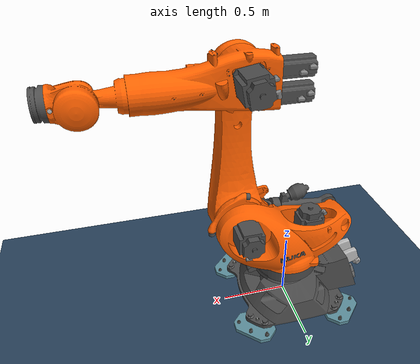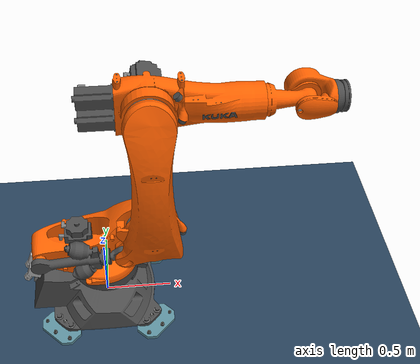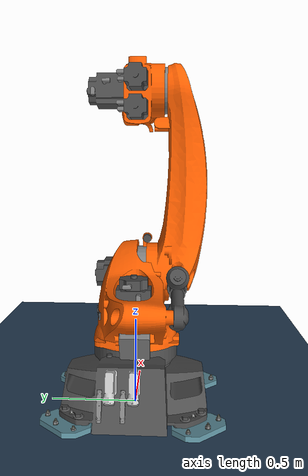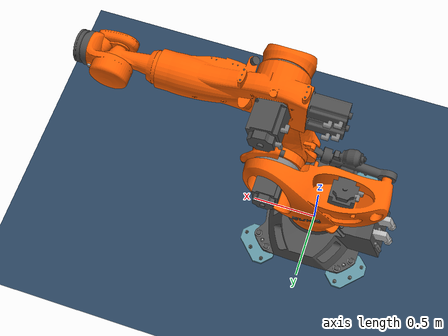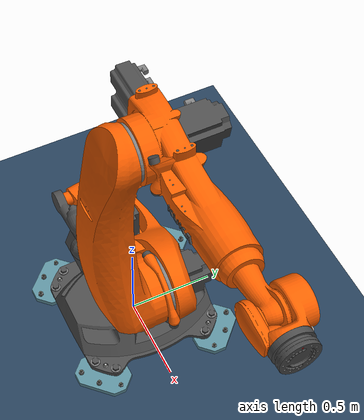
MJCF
<mujoco model="kuka_kr300_r2500_ultra_with_hydraulic_loop">
  <compiler angle="radian" meshdir="." autolimits="true" inertiafromgeom="true"/>
  <option gravity="0 0 -9.81" timestep="0.001" integrator="implicitfast" iterations="200" />
  <visual>
    <headlight diffuse="0.6 0.6 0.6" ambient="0.3 0.3 0.3" specular="0 0 0"/>
    <rgba haze="0.15 0.25 0.35 1"/>
    <global azimuth="220" elevation="-10"/>
    <quality shadowsize="8192"/>
  </visual>
  <default>
    <geom density="800" contype="0" conaffinity="0" />
    <joint damping="8" armature="0.2" frictionloss="0.05" />
  </default>
  <asset>
    <texture type="skybox" builtin="gradient" rgb1="0.3 0.5 0.7" rgb2="0 0 0" width="512" height="3072"/>
    <texture type="2d" name="groundplane" builtin="checker" mark="edge" rgb1="0.2 0.3 0.4" rgb2="0.1 0.2 0.3" markrgb="0.8 0.8 0.8" width="300" height="300"/>
    <material name="groundplane" texture="groundplane" texuniform="true" texrepeat="5 5" reflectance="0.2"/>
    <mesh name="mesh_base" file="KUKA-KR-300-R2500-ultra-base.stl" />
    <mesh name="mesh_1" file="KUKA-KR-300-R2500-ultra-1.stl" />
    <mesh name="mesh_2" file="KUKA-KR-300-R2500-ultra-2.stl" />
    <mesh name="mesh_3" file="KUKA-KR-300-R2500-ultra-3.stl" />
    <mesh name="mesh_4" file="KUKA-KR-300-R2500-ultra-4.stl" />
    <mesh name="mesh_5" file="KUKA-KR-300-R2500-ultra-5.stl" />
    <mesh name="mesh_6" file="KUKA-KR-300-R2500-ultra-6.stl" />
    <mesh name="mesh_7" file="KUKA-KR-300-R2500-ultra-7.stl" />
    <mesh name="mesh_8" file="KUKA-KR-300-R2500-ultra-8.stl" />
    <mesh name="vmesh_base" file="obj/0.obj" />
    <mesh name="cmesh_0" file="obj/0.obj" />
    <mesh name="vmesh_0_0" file="obj/0_0.obj" />
    <mesh name="vmesh_0_1" file="obj/0_1.obj" />
    <mesh name="vmesh_0_2" file="obj/0_2.obj" />
    <mesh name="vmesh_0_3" file="obj/0_3.obj" />
    <mesh name="vmesh_0_4" file="obj/0_4.obj" />
    <mesh name="vmesh_1" file="obj/1.obj" />
    <mesh name="cmesh_1" file="obj/1.obj" />
    <mesh name="vmesh_1_0" file="obj/1_0.obj" />
    <mesh name="vmesh_1_1" file="obj/1_1.obj" />
    <mesh name="vmesh_1_2" file="obj/1_2.obj" />
    <mesh name="vmesh_2" file="obj/2.obj" />
    <mesh name="cmesh_2" file="obj/2.obj" />
    <mesh name="vmesh_2_0" file="obj/2_0.obj" />
    <mesh name="vmesh_2_1" file="obj/2_1.obj" />
    <mesh name="vmesh_2_2" file="obj/2_2.obj" />
    <mesh name="vmesh_3" file="obj/3.obj" />
    <mesh name="cmesh_3" file="obj/3.obj" />
    <mesh name="vmesh_3_0" file="obj/3_0.obj" />
    <mesh name="vmesh_3_1" file="obj/3_1.obj" />
    <mesh name="vmesh_3_2" file="obj/3_2.obj" />
    <mesh name="vmesh_4" file="obj/4.obj" />
    <mesh name="vmesh_5" file="obj/5.obj" />
    <mesh name="cmesh_5" file="obj/5.obj" />
    <mesh name="vmesh_5_0" file="obj/5_0.obj" />
    <mesh name="vmesh_5_1" file="obj/5_1.obj" />
    <mesh name="vmesh_5_2" file="obj/5_2.obj" />
    <mesh name="vmesh_6" file="obj/6.obj" />
    <mesh name="cmesh_6" file="obj/6.obj" />
    <mesh name="vmesh_6_0" file="obj/6_0.obj" inertia="shell" />
    <mesh name="vmesh_6_1" file="obj/6_1.obj" inertia="shell" />
    <mesh name="vmesh_6_2" file="obj/6_2.obj" inertia="shell" />
    <mesh name="vmesh_6_3" file="obj/6_3.obj" inertia="shell" />
    <mesh name="vmesh_7" file="obj/7.obj" />
    <mesh name="vmesh_8" file="obj/8.obj" />
  </asset>
  <worldbody>
    <light name="key_light" pos="3 0 4" dir="-1 0 -1" directional="true" diffuse="0.9 0.9 0.9"/>
    <light name="fill_light" pos="-2 2 3" dir="0 -0.3 -1" directional="true" diffuse="0.35 0.35 0.4"/>
    <geom name="floor" size="0 0 0.05" type="plane" material="groundplane"/>
    <body name="base_link" pos="0 0 0" quat="1 0 0 0">
      <geom type="mesh" mesh="cmesh_0" contype="1" conaffinity="1" group="3" rgba="0 0 0 0" />
      <geom type="mesh" mesh="vmesh_0_0" mass="0" rgba="0.388235 0.400000 0.356863 1" contype="0" conaffinity="0" group="1" />
      <geom type="mesh" mesh="vmesh_0_1" mass="0" rgba="0.298039 0.298039 0.298039 1" contype="0" conaffinity="0" group="1" />
      <geom type="mesh" mesh="vmesh_0_2" mass="0" rgba="0.368627 0.568627 0.619608 1" contype="0" conaffinity="0" group="1" />
      <geom type="mesh" mesh="vmesh_0_3" mass="0" rgba="0.749020 0.749020 0.749020 1" contype="0" conaffinity="0" group="1" />
      <geom type="mesh" mesh="vmesh_0_4" mass="0" rgba="0.498039 0.498039 0.498039 1" contype="0" conaffinity="0" group="1" />
      <body name="link1" pos="0 0 0.705" >
        <joint name="joint1" type="hinge" axis="0 0 1" range="-3.22885912 3.22885912" />
        <geom type="mesh" mesh="cmesh_1" pos="-0 -0 -0.705" quat="1 -0 0 -0" contype="1" conaffinity="1" group="3" rgba="0 0 0 0" />
        <geom type="mesh" mesh="vmesh_1_0" mass="0" rgba="1.000000 0.376471 0.000000 1" pos="-0 -0 -0.705" quat="1 -0 0 -0" contype="0" conaffinity="0" group="1" />
        <geom type="mesh" mesh="vmesh_1_1" mass="0" rgba="0.298039 0.298039 0.298039 1" pos="-0 -0 -0.705" quat="1 -0 0 -0" contype="0" conaffinity="0" group="1" />
        <geom type="mesh" mesh="vmesh_1_2" mass="0" rgba="0.498039 0.498039 0.498039 1" pos="-0 -0 -0.705" quat="1 -0 0 -0" contype="0" conaffinity="0" group="1" />
        <body name="balancer_cylinder" pos="-0.446956 -0.244 -0.069725" >
          <joint name="balancer_base_hinge" type="hinge" axis="0 1 0" range="-1.57079633 1.57079633" />
          <geom type="mesh" mesh="vmesh_7" rgba="0.298039 0.298039 0.298039 1" pos="0.446956 0.244 -0.635275"/>
          <body name="balancer_rod" pos="0.596956 0.004 0.069725">
            <joint name="balancer_slide" type="slide" axis="0.993245 0.006655 0.116008" range="0 0.6" damping="40" armature="0.5" frictionloss="10" />
            <geom type="mesh" mesh="vmesh_8" rgba="0.298039 0.298039 0.298039 1" pos="-0.15 0.24 -0.705"/>
            <site name="rod_pin" pos="0 0 0" size="0.01" />
          </body>
        </body>
        <body name="link2" pos="0.35 0 0.0" >
          <joint name="joint2" type="hinge" axis="0 1 0" range="-0.872664626 1.48352986" />
          <geom type="mesh" mesh="cmesh_2" pos="-0.35 0 -0.705 " contype="1" conaffinity="1" group="3" rgba="0 0 0 0" />
          <geom type="mesh" mesh="vmesh_2_0" mass="0" rgba="1.000000 0.376471 0.000000 1" pos="-0.35 0 -0.705 " contype="0" conaffinity="0" group="1" />
          <geom type="mesh" mesh="vmesh_2_1" mass="0" rgba="0.298039 0.298039 0.298039 1" pos="-0.35 0 -0.705 " contype="0" conaffinity="0" group="1" />
          <geom type="mesh" mesh="vmesh_2_2" mass="0" rgba="0.498039 0.498039 0.498039 1" pos="-0.35 0 -0.705 " contype="0" conaffinity="0" group="1" />
            <site name="arm_pin" pos="-0.2 -0.24 0" size="0.01" />
            <body name="link3" pos="0 0 1.15" quat="1 0 -0 -0">
            <joint name="joint3" type="hinge" axis="0 1 0" range="-3.66519143 1.13446401" />
            <geom type="mesh" mesh="cmesh_3" pos="-0.35 0 -1.855" contype="1" conaffinity="1" group="3" rgba="0 0 0 0" />
            <geom type="mesh" mesh="vmesh_3_0" mass="0" rgba="1.000000 0.376471 0.000000 1" pos="-0.35 0 -1.855" contype="0" conaffinity="0" group="1" />
            <geom type="mesh" mesh="vmesh_3_1" mass="0" rgba="0.498039 0.498039 0.498039 1" pos="-0.35 0 -1.855" contype="0" conaffinity="0" group="1" />
            <geom type="mesh" mesh="vmesh_3_2" mass="0" rgba="0.298039 0.298039 0.298039 1" pos="-0.35 0 -1.855" contype="0" conaffinity="0" group="1" />
            <body name="link4" pos="1 0 -0.041" >
              <joint name="joint4" type="hinge" axis="1 0 0" range="-6.10865238 6.10865238" />
              <geom type="mesh" mesh="vmesh_4" rgba="1.000000 0.376471 0.000000 1" pos="-1.35 0 -1.814"/>
              <body name="link5" pos="0 0 0" >
                <joint name="joint5" type="hinge" axis="0 1 0" range="-2.13802833 2.13802833" />
                <geom type="mesh" mesh="cmesh_5" pos="-1.35 0 -1.814" contype="1" conaffinity="1" group="3" rgba="0 0 0 0"/>
                <geom type="mesh" mesh="vmesh_5_0" mass="0" rgba="1.000000 0.376471 0.000000 1" pos="-1.35 0 -1.814" contype="0" conaffinity="0" group="1"/>
                <geom type="mesh" mesh="vmesh_5_1" mass="0" rgba="0.298039 0.298039 0.298039 1" pos="-1.35 0 -1.814" contype="0" conaffinity="0" group="1"/>
                <geom type="mesh" mesh="vmesh_5_2" mass="0" rgba="0.749020 0.749020 0.749020 1" pos="-1.35 0 -1.814" contype="0" conaffinity="0" group="1"/>
                <body name="link6" pos="0 0 0" >
                  <joint name="joint6" type="hinge" axis="1 0 0" range="-6.10865238 6.10865238" />
                  <geom type="mesh" mesh="cmesh_6" pos="-1.35 0 -1.814" contype="1" conaffinity="1" group="3" rgba="0 0 0 0"/>
                  <geom type="mesh" mesh="vmesh_6_0" mass="0" rgba="1.000000 0.000000 0.000000 1" pos="-1.35 0 -1.814" contype="0" conaffinity="0" group="1"/>
                  <geom type="mesh" mesh="vmesh_6_1" mass="0" rgba="0.298039 0.298039 0.298039 1" pos="-1.35 0 -1.814" contype="0" conaffinity="0" group="1"/>
                  <geom type="mesh" mesh="vmesh_6_2" mass="0" rgba="0.498039 0.498039 0.498039 1" pos="-1.35 0 -1.814" contype="0" conaffinity="0" group="1"/>
                  <geom type="mesh" mesh="vmesh_6_3" mass="0" rgba="0.749020 0.749020 0.749020 1" pos="-1.35 0 -1.814" contype="0" conaffinity="0" group="1"/>
                </body>
              </body>
            </body>
          </body>
        </body>
      </body>
    </body>
  </worldbody>
  <equality>
    <connect name="balancer_loop_close" site1="rod_pin" site2="arm_pin" solref="0.03 1" solimp="0.95 0.99 0.001" />
  </equality>
</mujoco>
